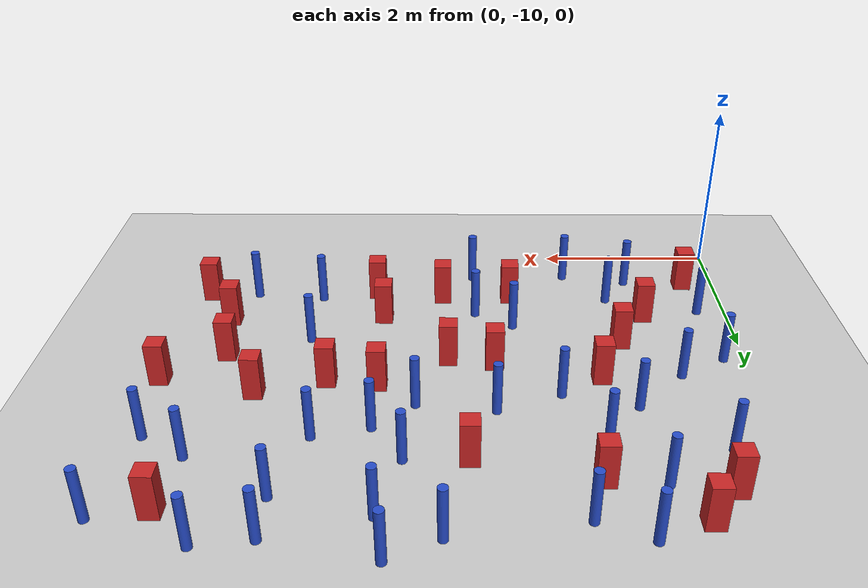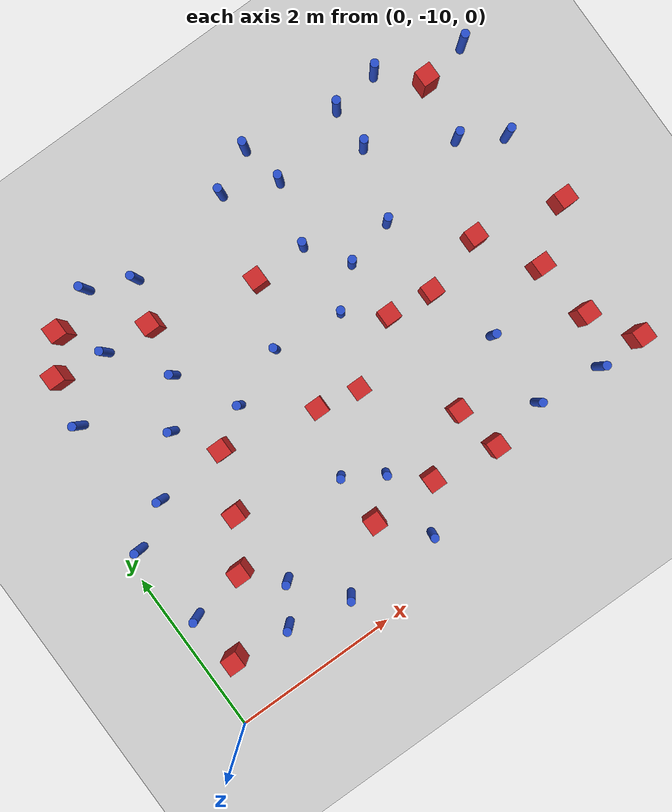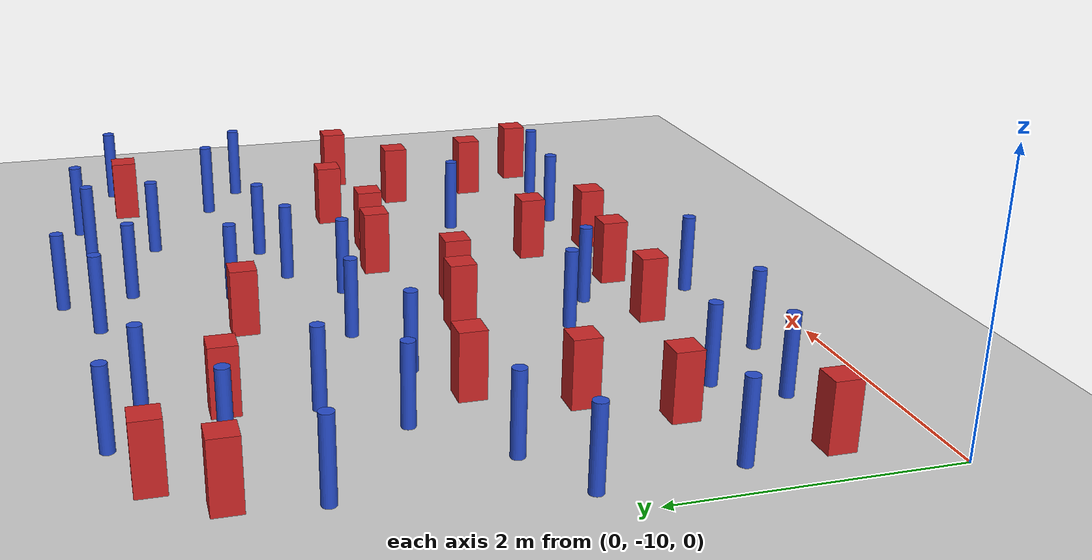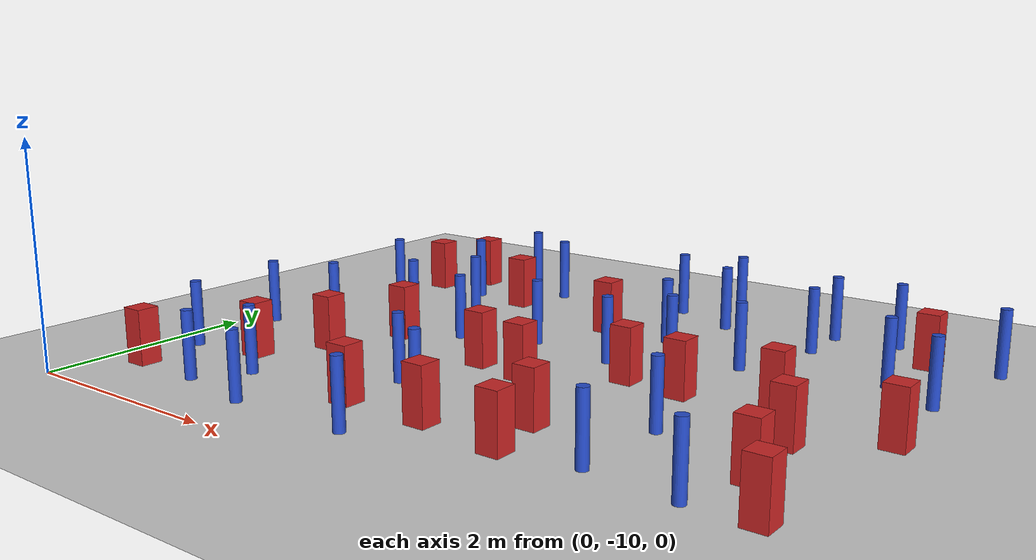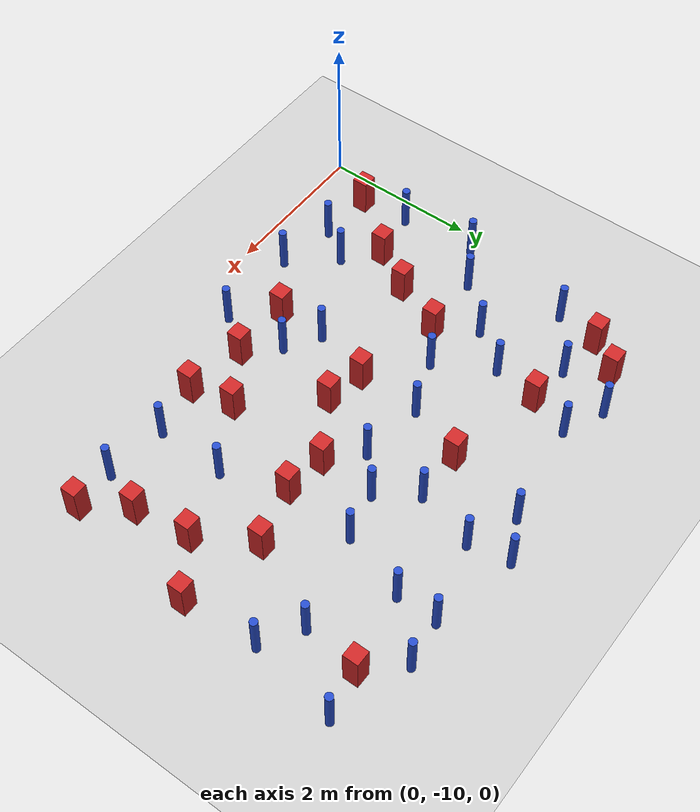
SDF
<sdf version="1.6">
 <world name="default">
  <model name="ground_plane">
   <static>1</static>
   <link name="link">
    <collision name="collision">
     <geometry><plane><normal>0 0 1</normal><size>100 100</size></plane></geometry>
     <surface><friction><ode><mu>100</mu><mu2>50</mu2></ode></friction></surface>
    </collision>
    <visual name="visual">
     <cast_shadows>0</cast_shadows>
     <geometry><plane><normal>0 0 1</normal><size>100 100</size></plane></geometry>
     <material>
      <ambient>1.0 1.0 1.0 1.0</ambient>
      <diffuse>0.8 0.8 0.8 1.0</diffuse>
      <specular>0.01 0.01 0.01 1.000000</specular>
     </material>
    </visual>
   </link>
  </model>
  <model name="pole_obstacle1">
   <static>true</static>
   <pose>4.04287633426 -6.49072544475 2.88873142074e-08 -9.90536690822e-09 4.60219948966e-07 -1.20965994976e-07</pose>
   <link name="link">
    <pose>0 0 0.3 0 -0 0</pose>
    <inertial>
     <mass>1</mass>
     <inertia><ixx>0.145833</ixx><ixy>0</ixy><ixz>0</ixz><iyy>0.145833</iyy><iyz>0</iyz><izz>0.125</izz></inertia>
    </inertial>
    <collision name="collision">
     <geometry><cylinder><radius>0.05</radius><length>.6</length></cylinder></geometry>
    </collision>
    <visual name="visual">
     <geometry><cylinder><radius>0.05</radius><length>.6</length></cylinder></geometry>
     <material>
      <script><name>Gazebo/Blue</name><uri>file://media/materials/scripts/gazebo.material</uri></script>
     </material>
    </visual>
   </link>
  </model>
  <model name="pole_obstacle7">
   <static>true</static>
   <pose>5.8151142587 -6.04497353995 2.88873142074e-08 -9.90536690842e-09 4.60219948965e-07 -1.20965994976e-07</pose>
   <link name="link">
    <pose>0 0 0.3 0 -0 0</pose>
    <inertial>
     <mass>1</mass>
     <inertia><ixx>0.145833</ixx><ixy>0</ixy><ixz>0</ixz><iyy>0.145833</iyy><iyz>0</iyz><izz>0.125</izz></inertia>
    </inertial>
    <collision name="collision">
     <geometry><cylinder><radius>0.05</radius><length>.6</length></cylinder></geometry>
    </collision>
    <visual name="visual">
     <geometry><cylinder><radius>0.05</radius><length>.6</length></cylinder></geometry>
     <material>
      <script><name>Gazebo/Blue</name><uri>file://media/materials/scripts/gazebo.material</uri></script>
     </material>
    </visual>
   </link>
  </model>
  <model name="pole_obstacle10">
   <static>true</static>
   <pose>6.29186113247 -6.3446759552 2.88873142074e-08 -9.90536690842e-09 4.60219948965e-07 -1.20965994976e-07</pose>
   <link name="link">
    <pose>0 0 0.3 0 -0 0</pose>
    <inertial>
     <mass>1</mass>
     <inertia><ixx>0.145833</ixx><ixy>0</ixy><ixz>0</ixz><iyy>0.145833</iyy><iyz>0</iyz><izz>0.125</izz></inertia>
    </inertial>
    <collision name="collision">
     <geometry><cylinder><radius>0.05</radius><length>.6</length></cylinder></geometry>
    </collision>
    <visual name="visual">
     <geometry><cylinder><radius>0.05</radius><length>.6</length></cylinder></geometry>
     <material>
      <script><name>Gazebo/Blue</name><uri>file://media/materials/scripts/gazebo.material</uri></script>
     </material>
    </visual>
   </link>
  </model>
  <model name="pole_obstacle12">
   <static>true</static>
   <pose>4.84203665692 -8.06786796718 2.88873142074e-08 -9.9053668967e-09 4.60219948993e-07 -1.20965994957e-07</pose>
   <link name="link">
    <pose>0 0 0.3 0 -0 0</pose>
    <inertial>
     <mass>1</mass>
     <inertia><ixx>0.145833</ixx><ixy>0</ixy><ixz>0</ixz><iyy>0.145833</iyy><iyz>0</iyz><izz>0.125</izz></inertia>
    </inertial>
    <collision name="collision">
     <geometry><cylinder><radius>0.05</radius><length>.6</length></cylinder></geometry>
    </collision>
    <visual name="visual">
     <geometry><cylinder><radius>0.05</radius><length>.6</length></cylinder></geometry>
     <material>
      <script><name>Gazebo/Blue</name><uri>file://media/materials/scripts/gazebo.material</uri></script>
     </material>
    </visual>
   </link>
  </model>
  <model name="pole_obstacle18">
   <static>true</static>
   <pose>0.325751754832 -8.67994105944 2.88873142074e-08 -9.90536691079e-09 4.6021994896e-07 -1.2096599498e-07</pose>
   <link name="link">
    <pose>0 0 0.3 0 -0 0</pose>
    <inertial>
     <mass>1</mass>
     <inertia><ixx>0.145833</ixx><ixy>0</ixy><ixz>0</ixz><iyy>0.145833</iyy><iyz>0</iyz><izz>0.125</izz></inertia>
    </inertial>
    <collision name="collision">
     <geometry><cylinder><radius>0.05</radius><length>.6</length></cylinder></geometry>
    </collision>
    <visual name="visual">
     <geometry><cylinder><radius>0.05</radius><length>.6</length></cylinder></geometry>
     <material>
      <script><name>Gazebo/Blue</name><uri>file://media/materials/scripts/gazebo.material</uri></script>
     </material>
    </visual>
   </link>
  </model>
  <model name="square_post_obstacle29">
   <static>true</static>
   <pose>4.04044984738 -8.52653990683 8.22691968438e-08 7.22125133819e-06 -7.54495500217e-07 2.29674213826e-05</pose>
   <link name="link">
    <pose>0 0 0.25 0 -0 0</pose>
    <inertial>
     <mass>100</mass>
     <inertia>
      <ixx>0.166667</ixx>
      <ixy>0</ixy>
      <ixz>0</ixz>
      <iyy>0.166667</iyy>
      <iyz>0</iyz>
      <izz>0.166667</izz>
     </inertia>
    </inertial>
    <collision name="collision"><geometry><box><size>.2 .2 .5</size></box></geometry></collision>
    <visual name="visual">
     <geometry><box><size>.2 .2 .5</size></box></geometry>
     <material>
      <script><name>Gazebo/Red</name><uri>file://media/materials/scripts/gazebo.material</uri></script>
     </material>
    </visual>
   </link>
  </model>
  <model name="pole_obstacle20">
   <static>true</static>
   <pose>1.982810739 -5.21497614298 2.88873142074e-08 -9.9053668918e-09 4.60219949005e-07 -1.20965994951e-07</pose>
   <link name="link">
    <pose>0 0 0.3 0 -0 0</pose>
    <inertial>
     <mass>1</mass>
     <inertia><ixx>0.145833</ixx><ixy>0</ixy><ixz>0</ixz><iyy>0.145833</iyy><iyz>0</iyz><izz>0.125</izz></inertia>
    </inertial>
    <collision name="collision">
     <geometry><cylinder><radius>0.05</radius><length>.6</length></cylinder></geometry>
    </collision>
    <visual name="visual">
     <geometry><cylinder><radius>0.05</radius><length>.6</length></cylinder></geometry>
     <material>
      <script><name>Gazebo/Blue</name><uri>file://media/materials/scripts/gazebo.material</uri></script>
     </material>
    </visual>
   </link>
  </model>
  <model name="pole_obstacle22">
   <static>true</static>
   <pose>2.78125124765 -6.76724016403 2.88873142074e-08 -9.90536689859e-09 4.60219948989e-07 -1.20965994961e-07</pose>
   <link name="link">
    <pose>0 0 0.3 0 -0 0</pose>
    <inertial>
     <mass>1</mass>
     <inertia><ixx>0.145833</ixx><ixy>0</ixy><ixz>0</ixz><iyy>0.145833</iyy><iyz>0</iyz><izz>0.125</izz></inertia>
    </inertial>
    <collision name="collision">
     <geometry><cylinder><radius>0.05</radius><length>.6</length></cylinder></geometry>
    </collision>
    <visual name="visual">
     <geometry><cylinder><radius>0.05</radius><length>.6</length></cylinder></geometry>
     <material>
      <script><name>Gazebo/Blue</name><uri>file://media/materials/scripts/gazebo.material</uri></script>
     </material>
    </visual>
   </link>
  </model>
  <model name="pole_obstacle27">
   <static>true</static>
   <pose>0.765801945852 -7.38767560222 2.88873142074e-08 -9.90536689661e-09 4.60219948993e-07 -1.20965994957e-07</pose>
   <link name="link">
    <pose>0 0 0.3 0 -0 0</pose>
    <inertial>
     <mass>1</mass>
     <inertia><ixx>0.145833</ixx><ixy>0</ixy><ixz>0</ixz><iyy>0.145833</iyy><iyz>0</iyz><izz>0.125</izz></inertia>
    </inertial>
    <collision name="collision">
     <geometry><cylinder><radius>0.05</radius><length>.6</length></cylinder></geometry>
    </collision>
    <visual name="visual">
     <geometry><cylinder><radius>0.05</radius><length>.6</length></cylinder></geometry>
     <material>
      <script><name>Gazebo/Blue</name><uri>file://media/materials/scripts/gazebo.material</uri></script>
     </material>
    </visual>
   </link>
  </model>
  <model name="square_post_obstacle37">
   <static>true</static>
   <pose>6.16039841906 -9.03129335491 8.22691968438e-08 7.2212513382e-06 -7.54495500217e-07 2.29674213826e-05</pose>
   <link name="link">
    <pose>0 0 0.25 0 -0 0</pose>
    <inertial>
     <mass>100</mass>
     <inertia>
      <ixx>0.166667</ixx>
      <ixy>0</ixy>
      <ixz>0</ixz>
      <iyy>0.166667</iyy>
      <iyz>0</iyz>
      <izz>0.166667</izz>
     </inertia>
    </inertial>
    <collision name="collision"><geometry><box><size>.2 .2 .5</size></box></geometry></collision>
    <visual name="visual">
     <geometry><box><size>.2 .2 .5</size></box></geometry>
     <material>
      <script><name>Gazebo/Red</name><uri>file://media/materials/scripts/gazebo.material</uri></script>
     </material>
    </visual>
   </link>
  </model>
  <model name="pole_obstacle42">
   <static>true</static>
   <pose>1.38248193923 -8.94168669638 2.88873142074e-08 -9.90536690474e-09 4.60219948974e-07 -1.2096599497e-07</pose>
   <link name="link">
    <pose>0 0 0.3 0 -0 0</pose>
    <inertial>
     <mass>1</mass>
     <inertia><ixx>0.145833</ixx><ixy>0</ixy><ixz>0</ixz><iyy>0.145833</iyy><iyz>0</iyz><izz>0.125</izz></inertia>
    </inertial>
    <collision name="collision">
     <geometry><cylinder><radius>0.05</radius><length>.6</length></cylinder></geometry>
    </collision>
    <visual name="visual">
     <geometry><cylinder><radius>0.05</radius><length>.6</length></cylinder></geometry>
     <material>
      <script><name>Gazebo/Blue</name><uri>file://media/materials/scripts/gazebo.material</uri></script>
     </material>
    </visual>
   </link>
  </model>
  <model name="square_post_obstacle41">
   <static>true</static>
   <pose>5.3135595105 -7.05821494191 8.22691968438e-08 7.22125133819e-06 -7.54495500217e-07 2.29674213826e-05</pose>
   <link name="link">
    <pose>0 0 0.25 0 -0 0</pose>
    <inertial>
     <mass>100</mass>
     <inertia>
      <ixx>0.166667</ixx>
      <ixy>0</ixy>
      <ixz>0</ixz>
      <iyy>0.166667</iyy>
      <iyz>0</iyz>
      <izz>0.166667</izz>
     </inertia>
    </inertial>
    <collision name="collision"><geometry><box><size>.2 .2 .5</size></box></geometry></collision>
    <visual name="visual">
     <geometry><box><size>.2 .2 .5</size></box></geometry>
     <material>
      <script><name>Gazebo/Red</name><uri>file://media/materials/scripts/gazebo.material</uri></script>
     </material>
    </visual>
   </link>
  </model>
  <model name="square_post_obstacle52">
   <static>true</static>
   <pose>2.55511348787 -8.97697152189 8.22691968438e-08 7.22125133819e-06 -7.54495500217e-07 2.29674213826e-05</pose>
   <link name="link">
    <pose>0 0 0.25 0 -0 0</pose>
    <inertial>
     <mass>100</mass>
     <inertia>
      <ixx>0.166667</ixx>
      <ixy>0</ixy>
      <ixz>0</ixz>
      <iyy>0.166667</iyy>
      <iyz>0</iyz>
      <izz>0.166667</izz>
     </inertia>
    </inertial>
    <collision name="collision"><geometry><box><size>.2 .2 .5</size></box></geometry></collision>
    <visual name="visual">
     <geometry><box><size>.2 .2 .5</size></box></geometry>
     <material>
      <script><name>Gazebo/Red</name><uri>file://media/materials/scripts/gazebo.material</uri></script>
     </material>
    </visual>
   </link>
  </model>
  <model name="pole_obstacle59">
   <static>true</static>
   <pose>1.69022382138 -6.33655352001 2.88873142074e-08 -9.90536689852e-09 4.60219948989e-07 -1.2096599496e-07</pose>
   <link name="link">
    <pose>0 0 0.3 0 -0 0</pose>
    <inertial>
     <mass>1</mass>
     <inertia><ixx>0.145833</ixx><ixy>0</ixy><ixz>0</ixz><iyy>0.145833</iyy><iyz>0</iyz><izz>0.125</izz></inertia>
    </inertial>
    <collision name="collision">
     <geometry><cylinder><radius>0.05</radius><length>.6</length></cylinder></geometry>
    </collision>
    <visual name="visual">
     <geometry><cylinder><radius>0.05</radius><length>.6</length></cylinder></geometry>
     <material>
      <script><name>Gazebo/Blue</name><uri>file://media/materials/scripts/gazebo.material</uri></script>
     </material>
    </visual>
   </link>
  </model>
  <model name="pole_obstacle62">
   <static>true</static>
   <pose>0.508377927704 -6.17928972363 2.88873142074e-08 -9.90536689714e-09 4.60219948992e-07 -1.20965994957e-07</pose>
   <link name="link">
    <pose>0 0 0.3 0 -0 0</pose>
    <inertial>
     <mass>1</mass>
     <inertia><ixx>0.145833</ixx><ixy>0</ixy><ixz>0</ixz><iyy>0.145833</iyy><iyz>0</iyz><izz>0.125</izz></inertia>
    </inertial>
    <collision name="collision">
     <geometry><cylinder><radius>0.05</radius><length>.6</length></cylinder></geometry>
    </collision>
    <visual name="visual">
     <geometry><cylinder><radius>0.05</radius><length>.6</length></cylinder></geometry>
     <material>
      <script><name>Gazebo/Blue</name><uri>file://media/materials/scripts/gazebo.material</uri></script>
     </material>
    </visual>
   </link>
  </model>
  <model name="pole_obstacle64">
   <static>true</static>
   <pose>3.31104170764 -5.00137474078 2.88873142074e-08 -9.90536689859e-09 4.60219948989e-07 -1.20965994961e-07</pose>
   <link name="link">
    <pose>0 0 0.3 0 -0 0</pose>
    <inertial>
     <mass>1</mass>
     <inertia><ixx>0.145833</ixx><ixy>0</ixy><ixz>0</ixz><iyy>0.145833</iyy><iyz>0</iyz><izz>0.125</izz></inertia>
    </inertial>
    <collision name="collision">
     <geometry><cylinder><radius>0.05</radius><length>.6</length></cylinder></geometry>
    </collision>
    <visual name="visual">
     <geometry><cylinder><radius>0.05</radius><length>.6</length></cylinder></geometry>
     <material>
      <script><name>Gazebo/Blue</name><uri>file://media/materials/scripts/gazebo.material</uri></script>
     </material>
    </visual>
   </link>
  </model>
  <model name="square_post_obstacle67">
   <static>true</static>
   <pose>5.7255229135 -7.75346443325 8.22691968438e-08 7.22125133819e-06 -7.54495500217e-07 2.29674213826e-05</pose>
   <link name="link">
    <pose>0 0 0.25 0 -0 0</pose>
    <inertial>
     <mass>100</mass>
     <inertia>
      <ixx>0.166667</ixx>
      <ixy>0</ixy>
      <ixz>0</ixz>
      <iyy>0.166667</iyy>
      <iyz>0</iyz>
      <izz>0.166667</izz>
     </inertia>
    </inertial>
    <collision name="collision"><geometry><box><size>.2 .2 .5</size></box></geometry></collision>
    <visual name="visual">
     <geometry><box><size>.2 .2 .5</size></box></geometry>
     <material>
      <script><name>Gazebo/Red</name><uri>file://media/materials/scripts/gazebo.material</uri></script>
     </material>
    </visual>
   </link>
  </model>
  <model name="pole_obstacle70">
   <static>true</static>
   <pose>2.97056904306 -8.62301015528 2.88873142074e-08 -9.90536692318e-09 4.6021994893e-07 -1.20965994988e-07</pose>
   <link name="link">
    <pose>0 0 0.3 0 -0 0</pose>
    <inertial>
     <mass>1</mass>
     <inertia><ixx>0.145833</ixx><ixy>0</ixy><ixz>0</ixz><iyy>0.145833</iyy><iyz>0</iyz><izz>0.125</izz></inertia>
    </inertial>
    <collision name="collision">
     <geometry><cylinder><radius>0.05</radius><length>.6</length></cylinder></geometry>
    </collision>
    <visual name="visual">
     <geometry><cylinder><radius>0.05</radius><length>.6</length></cylinder></geometry>
     <material>
      <script><name>Gazebo/Blue</name><uri>file://media/materials/scripts/gazebo.material</uri></script>
     </material>
    </visual>
   </link>
  </model>
  <model name="pole_obstacle76">
   <static>true</static>
   <pose>3.61656505468 -6.8659625876 2.88873142074e-08 -9.90536689859e-09 4.60219948989e-07 -1.20965994961e-07</pose>
   <link name="link">
    <pose>0 0 0.3 0 -0 0</pose>
    <inertial>
     <mass>1</mass>
     <inertia><ixx>0.145833</ixx><ixy>0</ixy><ixz>0</ixz><iyy>0.145833</iyy><iyz>0</iyz><izz>0.125</izz></inertia>
    </inertial>
    <collision name="collision">
     <geometry><cylinder><radius>0.05</radius><length>.6</length></cylinder></geometry>
    </collision>
    <visual name="visual">
     <geometry><cylinder><radius>0.05</radius><length>.6</length></cylinder></geometry>
     <material>
      <script><name>Gazebo/Blue</name><uri>file://media/materials/scripts/gazebo.material</uri></script>
     </material>
    </visual>
   </link>
  </model>
  <model name="pole_obstacle77">
   <static>true</static>
   <pose>2.54101923501 -8.35413236426 2.88873142074e-08 -9.90536692318e-09 4.6021994893e-07 -1.20965994988e-07</pose>
   <link name="link">
    <pose>0 0 0.3 0 -0 0</pose>
    <inertial>
     <mass>1</mass>
     <inertia><ixx>0.145833</ixx><ixy>0</ixy><ixz>0</ixz><iyy>0.145833</iyy><iyz>0</iyz><izz>0.125</izz></inertia>
    </inertial>
    <collision name="collision">
     <geometry><cylinder><radius>0.05</radius><length>.6</length></cylinder></geometry>
    </collision>
    <visual name="visual">
     <geometry><cylinder><radius>0.05</radius><length>.6</length></cylinder></geometry>
     <material>
      <script><name>Gazebo/Blue</name><uri>file://media/materials/scripts/gazebo.material</uri></script>
     </material>
    </visual>
   </link>
  </model>
  <model name="pole_obstacle79">
   <static>true</static>
   <pose>4.91550387004 -5.50402393911 2.88873142074e-08 -9.90536690842e-09 4.60219948965e-07 -1.20965994976e-07</pose>
   <link name="link">
    <pose>0 0 0.3 0 -0 0</pose>
    <inertial>
     <mass>1</mass>
     <inertia><ixx>0.145833</ixx><ixy>0</ixy><ixz>0</ixz><iyy>0.145833</iyy><iyz>0</iyz><izz>0.125</izz></inertia>
    </inertial>
    <collision name="collision">
     <geometry><cylinder><radius>0.05</radius><length>.6</length></cylinder></geometry>
    </collision>
    <visual name="visual">
     <geometry><cylinder><radius>0.05</radius><length>.6</length></cylinder></geometry>
     <material>
      <script><name>Gazebo/Blue</name><uri>file://media/materials/scripts/gazebo.material</uri></script>
     </material>
    </visual>
   </link>
  </model>
  <model name="pole_obstacle90">
   <static>true</static>
   <pose>2.09218858942 -7.04279256561 2.88873142074e-08 -9.90536689859e-09 4.60219948989e-07 -1.20965994961e-07</pose>
   <link name="link">
    <pose>0 0 0.3 0 -0 0</pose>
    <inertial>
     <mass>1</mass>
     <inertia><ixx>0.145833</ixx><ixy>0</ixy><ixz>0</ixz><iyy>0.145833</iyy><iyz>0</iyz><izz>0.125</izz></inertia>
    </inertial>
    <collision name="collision">
     <geometry><cylinder><radius>0.05</radius><length>.6</length></cylinder></geometry>
    </collision>
    <visual name="visual">
     <geometry><cylinder><radius>0.05</radius><length>.6</length></cylinder></geometry>
     <material>
      <script><name>Gazebo/Blue</name><uri>file://media/materials/scripts/gazebo.material</uri></script>
     </material>
    </visual>
   </link>
  </model>
  <model name="pole_obstacle92">
   <static>true</static>
   <pose>1.31041038531 -6.83688236487 2.88873142074e-08 -9.90536689852e-09 4.60219948989e-07 -1.2096599496e-07</pose>
   <link name="link">
    <pose>0 0 0.3 0 -0 0</pose>
    <inertial>
     <mass>1</mass>
     <inertia><ixx>0.145833</ixx><ixy>0</ixy><ixz>0</ixz><iyy>0.145833</iyy><iyz>0</iyz><izz>0.125</izz></inertia>
    </inertial>
    <collision name="collision">
     <geometry><cylinder><radius>0.05</radius><length>.6</length></cylinder></geometry>
    </collision>
    <visual name="visual">
     <geometry><cylinder><radius>0.05</radius><length>.6</length></cylinder></geometry>
     <material>
      <script><name>Gazebo/Blue</name><uri>file://media/materials/scripts/gazebo.material</uri></script>
     </material>
    </visual>
   </link>
  </model>
  <model name="square_post_obstacle87">
   <static>true</static>
   <pose>5.81590552961 -8.47734369625 8.22691968438e-08 7.22125133819e-06 -7.54495500217e-07 2.29674213826e-05</pose>
   <link name="link">
    <pose>0 0 0.25 0 -0 0</pose>
    <inertial>
     <mass>100</mass>
     <inertia>
      <ixx>0.166667</ixx>
      <ixy>0</ixy>
      <ixz>0</ixz>
      <iyy>0.166667</iyy>
      <iyz>0</iyz>
      <izz>0.166667</izz>
     </inertia>
    </inertial>
    <collision name="collision"><geometry><box><size>.2 .2 .5</size></box></geometry></collision>
    <visual name="visual">
     <geometry><box><size>.2 .2 .5</size></box></geometry>
     <material>
      <script><name>Gazebo/Red</name><uri>file://media/materials/scripts/gazebo.material</uri></script>
     </material>
    </visual>
   </link>
  </model>
  <model name="pole_obstacle98">
   <static>true</static>
   <pose>3.82572212964 -4.74220280069 2.88873142074e-08 -9.90536689859e-09 4.60219948989e-07 -1.20965994961e-07</pose>
   <link name="link">
    <pose>0 0 0.3 0 -0 0</pose>
    <inertial>
     <mass>1</mass>
     <inertia><ixx>0.145833</ixx><ixy>0</ixy><ixz>0</ixz><iyy>0.145833</iyy><iyz>0</iyz><izz>0.125</izz></inertia>
    </inertial>
    <collision name="collision">
     <geometry><cylinder><radius>0.05</radius><length>.6</length></cylinder></geometry>
    </collision>
    <visual name="visual">
     <geometry><cylinder><radius>0.05</radius><length>.6</length></cylinder></geometry>
     <material>
      <script><name>Gazebo/Blue</name><uri>file://media/materials/scripts/gazebo.material</uri></script>
     </material>
    </visual>
   </link>
  </model>
  <model name="square_post_obstacle88">
   <static>true</static>
   <pose>2.77892598183 -7.58141681417 8.22691968438e-08 7.2212513382e-06 -7.54495500217e-07 2.29674213826e-05</pose>
   <link name="link">
    <pose>0 0 0.25 0 -0 0</pose>
    <inertial>
     <mass>100</mass>
     <inertia>
      <ixx>0.166667</ixx>
      <ixy>0</ixy>
      <ixz>0</ixz>
      <iyy>0.166667</iyy>
      <iyz>0</iyz>
      <izz>0.166667</izz>
     </inertia>
    </inertial>
    <collision name="collision"><geometry><box><size>.2 .2 .5</size></box></geometry></collision>
    <visual name="visual">
     <geometry><box><size>.2 .2 .5</size></box></geometry>
     <material>
      <script><name>Gazebo/Red</name><uri>file://media/materials/scripts/gazebo.material</uri></script>
     </material>
    </visual>
   </link>
  </model>
  <model name="pole_obstacle101">
   <static>true</static>
   <pose>4.80927617181 -8.96978987125 2.88873142074e-08 -9.9053668967e-09 4.60219948993e-07 -1.20965994957e-07</pose>
   <link name="link">
    <pose>0 0 0.3 0 -0 0</pose>
    <inertial>
     <mass>1</mass>
     <inertia><ixx>0.145833</ixx><ixy>0</ixy><ixz>0</ixz><iyy>0.145833</iyy><iyz>0</iyz><izz>0.125</izz></inertia>
    </inertial>
    <collision name="collision">
     <geometry><cylinder><radius>0.05</radius><length>.6</length></cylinder></geometry>
    </collision>
    <visual name="visual">
     <geometry><cylinder><radius>0.05</radius><length>.6</length></cylinder></geometry>
     <material>
      <script><name>Gazebo/Blue</name><uri>file://media/materials/scripts/gazebo.material</uri></script>
     </material>
    </visual>
   </link>
  </model>
  <model name="pole_obstacle104">
   <static>true</static>
   <pose>3.9267713062 -5.26392360913 2.88873142074e-08 -9.90536689859e-09 4.60219948989e-07 -1.20965994961e-07</pose>
   <link name="link">
    <pose>0 0 0.3 0 -0 0</pose>
    <inertial>
     <mass>1</mass>
     <inertia><ixx>0.145833</ixx><ixy>0</ixy><ixz>0</ixz><iyy>0.145833</iyy><iyz>0</iyz><izz>0.125</izz></inertia>
    </inertial>
    <collision name="collision">
     <geometry><cylinder><radius>0.05</radius><length>.6</length></cylinder></geometry>
    </collision>
    <visual name="visual">
     <geometry><cylinder><radius>0.05</radius><length>.6</length></cylinder></geometry>
     <material>
      <script><name>Gazebo/Blue</name><uri>file://media/materials/scripts/gazebo.material</uri></script>
     </material>
    </visual>
   </link>
  </model>
  <model name="pole_obstacle105">
   <static>true</static>
   <pose>4.63309433647 -6.3471536332 2.88873142074e-08 -9.90536690842e-09 4.60219948965e-07 -1.20965994976e-07</pose>
   <link name="link">
    <pose>0 0 0.3 0 -0 0</pose>
    <inertial>
     <mass>1</mass>
     <inertia><ixx>0.145833</ixx><ixy>0</ixy><ixz>0</ixz><iyy>0.145833</iyy><iyz>0</iyz><izz>0.125</izz></inertia>
    </inertial>
    <collision name="collision">
     <geometry><cylinder><radius>0.05</radius><length>.6</length></cylinder></geometry>
    </collision>
    <visual name="visual">
     <geometry><cylinder><radius>0.05</radius><length>.6</length></cylinder></geometry>
     <material>
      <script><name>Gazebo/Blue</name><uri>file://media/materials/scripts/gazebo.material</uri></script>
     </material>
    </visual>
   </link>
  </model>
  <model name="square_post_obstacle97">
   <static>true</static>
   <pose>1.63981902081 -7.32814832434 8.22691968438e-08 7.2212513382e-06 -7.54495500217e-07 2.29674213826e-05</pose>
   <link name="link">
    <pose>0 0 0.25 0 -0 0</pose>
    <inertial>
     <mass>100</mass>
     <inertia>
      <ixx>0.166667</ixx>
      <ixy>0</ixy>
      <ixz>0</ixz>
      <iyy>0.166667</iyy>
      <iyz>0</iyz>
      <izz>0.166667</izz>
     </inertia>
    </inertial>
    <collision name="collision"><geometry><box><size>.2 .2 .5</size></box></geometry></collision>
    <visual name="visual">
     <geometry><box><size>.2 .2 .5</size></box></geometry>
     <material>
      <script><name>Gazebo/Red</name><uri>file://media/materials/scripts/gazebo.material</uri></script>
     </material>
    </visual>
   </link>
  </model>
  <model name="pole_obstacle115">
   <static>true</static>
   <pose>1.09864099348 -9.35944741339 2.88873142074e-08 -9.90536690474e-09 4.60219948974e-07 -1.2096599497e-07</pose>
   <link name="link">
    <pose>0 0 0.3 0 -0 0</pose>
    <inertial>
     <mass>1</mass>
     <inertia><ixx>0.145833</ixx><ixy>0</ixy><ixz>0</ixz><iyy>0.145833</iyy><iyz>0</iyz><izz>0.125</izz></inertia>
    </inertial>
    <collision name="collision">
     <geometry><cylinder><radius>0.05</radius><length>.6</length></cylinder></geometry>
    </collision>
    <visual name="visual">
     <geometry><cylinder><radius>0.05</radius><length>.6</length></cylinder></geometry>
     <material>
      <script><name>Gazebo/Blue</name><uri>file://media/materials/scripts/gazebo.material</uri></script>
     </material>
    </visual>
   </link>
  </model>
  <model name="square_post_obstacle105">
   <static>true</static>
   <pose>1.81476592239 -5.73671795768 8.22691968438e-08 7.2212513382e-06 -7.54495500217e-07 2.29674213826e-05</pose>
   <link name="link">
    <pose>0 0 0.25 0 -0 0</pose>
    <inertial>
     <mass>100</mass>
     <inertia>
      <ixx>0.166667</ixx>
      <ixy>0</ixy>
      <ixz>0</ixz>
      <iyy>0.166667</iyy>
      <iyz>0</iyz>
      <izz>0.166667</izz>
     </inertia>
    </inertial>
    <collision name="collision"><geometry><box><size>.2 .2 .5</size></box></geometry></collision>
    <visual name="visual">
     <geometry><box><size>.2 .2 .5</size></box></geometry>
     <material>
      <script><name>Gazebo/Red</name><uri>file://media/materials/scripts/gazebo.material</uri></script>
     </material>
    </visual>
   </link>
  </model>
  <model name="pole_obstacle125">
   <static>true</static>
   <pose>1.22670410657 -5.68445509134 2.88873142074e-08 -9.90536689852e-09 4.60219948989e-07 -1.2096599496e-07</pose>
   <link name="link">
    <pose>0 0 0.3 0 -0 0</pose>
    <inertial>
     <mass>1</mass>
     <inertia><ixx>0.145833</ixx><ixy>0</ixy><ixz>0</ixz><iyy>0.145833</iyy><iyz>0</iyz><izz>0.125</izz></inertia>
    </inertial>
    <collision name="collision">
     <geometry><cylinder><radius>0.05</radius><length>.6</length></cylinder></geometry>
    </collision>
    <visual name="visual">
     <geometry><cylinder><radius>0.05</radius><length>.6</length></cylinder></geometry>
     <material>
      <script><name>Gazebo/Blue</name><uri>file://media/materials/scripts/gazebo.material</uri></script>
     </material>
    </visual>
   </link>
  </model>
  <model name="square_post_obstacle115">
   <static>true</static>
   <pose>5.90699300105 -5.31852797922 8.22691968438e-08 7.2212513382e-06 -7.54495500217e-07 2.29674213826e-05</pose>
   <link name="link">
    <pose>0 0 0.25 0 -0 0</pose>
    <inertial>
     <mass>100</mass>
     <inertia>
      <ixx>0.166667</ixx>
      <ixy>0</ixy>
      <ixz>0</ixz>
      <iyy>0.166667</iyy>
      <iyz>0</iyz>
      <izz>0.166667</izz>
     </inertia>
    </inertial>
    <collision name="collision"><geometry><box><size>.2 .2 .5</size></box></geometry></collision>
    <visual name="visual">
     <geometry><box><size>.2 .2 .5</size></box></geometry>
     <material>
      <script><name>Gazebo/Red</name><uri>file://media/materials/scripts/gazebo.material</uri></script>
     </material>
    </visual>
   </link>
  </model>
  <model name="square_post_obstacle117">
   <static>true</static>
   <pose>0.939810982237 -5.20333505614 8.22691968438e-08 7.22125133819e-06 -7.54495500217e-07 2.29674213826e-05</pose>
   <link name="link">
    <pose>0 0 0.25 0 -0 0</pose>
    <inertial>
     <mass>100</mass>
     <inertia>
      <ixx>0.166667</ixx>
      <ixy>0</ixy>
      <ixz>0</ixz>
      <iyy>0.166667</iyy>
      <iyz>0</iyz>
      <izz>0.166667</izz>
     </inertia>
    </inertial>
    <collision name="collision"><geometry><box><size>.2 .2 .5</size></box></geometry></collision>
    <visual name="visual">
     <geometry><box><size>.2 .2 .5</size></box></geometry>
     <material>
      <script><name>Gazebo/Red</name><uri>file://media/materials/scripts/gazebo.material</uri></script>
     </material>
    </visual>
   </link>
  </model>
  <model name="square_post_obstacle139">
   <static>true</static>
   <pose>4.14708402588 -9.08529104154 8.22691968438e-08 7.22125133819e-06 -7.54495500217e-07 2.29674213826e-05</pose>
   <link name="link">
    <pose>0 0 0.25 0 -0 0</pose>
    <inertial>
     <mass>100</mass>
     <inertia>
      <ixx>0.166667</ixx>
      <ixy>0</ixy>
      <ixz>0</ixz>
      <iyy>0.166667</iyy>
      <iyz>0</iyz>
      <izz>0.166667</izz>
     </inertia>
    </inertial>
    <collision name="collision"><geometry><box><size>.2 .2 .5</size></box></geometry></collision>
    <visual name="visual">
     <geometry><box><size>.2 .2 .5</size></box></geometry>
     <material>
      <script><name>Gazebo/Red</name><uri>file://media/materials/scripts/gazebo.material</uri></script>
     </material>
    </visual>
   </link>
  </model>
  <model name="square_post_obstacle142">
   <static>true</static>
   <pose>3.06664992832 -6.02341117171 8.22691968438e-08 7.22125133819e-06 -7.54495500217e-07 2.29674213826e-05</pose>
   <link name="link">
    <pose>0 0 0.25 0 -0 0</pose>
    <inertial>
     <mass>100</mass>
     <inertia>
      <ixx>0.166667</ixx>
      <ixy>0</ixy>
      <ixz>0</ixz>
      <iyy>0.166667</iyy>
      <iyz>0</iyz>
      <izz>0.166667</izz>
     </inertia>
    </inertial>
    <collision name="collision"><geometry><box><size>.2 .2 .5</size></box></geometry></collision>
    <visual name="visual">
     <geometry><box><size>.2 .2 .5</size></box></geometry>
     <material>
      <script><name>Gazebo/Red</name><uri>file://media/materials/scripts/gazebo.material</uri></script>
     </material>
    </visual>
   </link>
  </model>
  <model name="square_post_obstacle148">
   <static>true</static>
   <pose>6.35718638517 -7.2982883843 8.22691968438e-08 7.2212513382e-06 -7.54495500217e-07 2.29674213826e-05</pose>
   <link name="link">
    <pose>0 0 0.25 0 -0 0</pose>
    <inertial>
     <mass>100</mass>
     <inertia>
      <ixx>0.166667</ixx>
      <ixy>0</ixy>
      <ixz>0</ixz>
      <iyy>0.166667</iyy>
      <iyz>0</iyz>
      <izz>0.166667</izz>
     </inertia>
    </inertial>
    <collision name="collision"><geometry><box><size>.2 .2 .5</size></box></geometry></collision>
    <visual name="visual">
     <geometry><box><size>.2 .2 .5</size></box></geometry>
     <material>
      <script><name>Gazebo/Red</name><uri>file://media/materials/scripts/gazebo.material</uri></script>
     </material>
    </visual>
   </link>
  </model>
  <model name="pole_obstacle162">
   <static>true</static>
   <pose>5.60923825936 -9.05204116258 2.88873142074e-08 -9.9053668967e-09 4.60219948993e-07 -1.20965994957e-07</pose>
   <link name="link">
    <pose>0 0 0.3 0 -0 0</pose>
    <inertial>
     <mass>1</mass>
     <inertia><ixx>0.145833</ixx><ixy>0</ixy><ixz>0</ixz><iyy>0.145833</iyy><iyz>0</iyz><izz>0.125</izz></inertia>
    </inertial>
    <collision name="collision">
     <geometry><cylinder><radius>0.05</radius><length>.6</length></cylinder></geometry>
    </collision>
    <visual name="visual">
     <geometry><cylinder><radius>0.05</radius><length>.6</length></cylinder></geometry>
     <material>
      <script><name>Gazebo/Blue</name><uri>file://media/materials/scripts/gazebo.material</uri></script>
     </material>
    </visual>
   </link>
  </model>
  <model name="pole_obstacle168">
   <static>true</static>
   <pose>5.4935655834 -4.9026032696 2.88873142074e-08 -9.90536690842e-09 4.60219948965e-07 -1.20965994976e-07</pose>
   <link name="link">
    <pose>0 0 0.3 0 -0 0</pose>
    <inertial>
     <mass>1</mass>
     <inertia><ixx>0.145833</ixx><ixy>0</ixy><ixz>0</ixz><iyy>0.145833</iyy><iyz>0</iyz><izz>0.125</izz></inertia>
    </inertial>
    <collision name="collision">
     <geometry><cylinder><radius>0.05</radius><length>.6</length></cylinder></geometry>
    </collision>
    <visual name="visual">
     <geometry><cylinder><radius>0.05</radius><length>.6</length></cylinder></geometry>
     <material>
      <script><name>Gazebo/Blue</name><uri>file://media/materials/scripts/gazebo.material</uri></script>
     </material>
    </visual>
   </link>
  </model>
  <model name="square_post_obstacle161">
   <static>true</static>
   <pose>0.390263361021 -9.30970449677 8.22691968438e-08 7.22125133819e-06 -7.54495500217e-07 2.29674213826e-05</pose>
   <link name="link">
    <pose>0 0 0.25 0 -0 0</pose>
    <inertial>
     <mass>100</mass>
     <inertia>
      <ixx>0.166667</ixx>
      <ixy>0</ixy>
      <ixz>0</ixz>
      <iyy>0.166667</iyy>
      <iyz>0</iyz>
      <izz>0.166667</izz>
     </inertia>
    </inertial>
    <collision name="collision"><geometry><box><size>.2 .2 .5</size></box></geometry></collision>
    <visual name="visual">
     <geometry><box><size>.2 .2 .5</size></box></geometry>
     <material>
      <script><name>Gazebo/Red</name><uri>file://media/materials/scripts/gazebo.material</uri></script>
     </material>
    </visual>
   </link>
  </model>
  <model name="square_post_obstacle162">
   <static>true</static>
   <pose>3.35513646008 -8.97921268587 8.22691968438e-08 7.22125133819e-06 -7.54495500217e-07 2.29674213826e-05</pose>
   <link name="link">
    <pose>0 0 0.25 0 -0 0</pose>
    <inertial>
     <mass>100</mass>
     <inertia>
      <ixx>0.166667</ixx>
      <ixy>0</ixy>
      <ixz>0</ixz>
      <iyy>0.166667</iyy>
      <iyz>0</iyz>
      <izz>0.166667</izz>
     </inertia>
    </inertial>
    <collision name="collision"><geometry><box><size>.2 .2 .5</size></box></geometry></collision>
    <visual name="visual">
     <geometry><box><size>.2 .2 .5</size></box></geometry>
     <material>
      <script><name>Gazebo/Red</name><uri>file://media/materials/scripts/gazebo.material</uri></script>
     </material>
    </visual>
   </link>
  </model>
  <model name="pole_obstacle174">
   <static>true</static>
   <pose>6.48322600134 -5.21964075652 2.88873142074e-08 -9.90536690842e-09 4.60219948965e-07 -1.20965994976e-07</pose>
   <link name="link">
    <pose>0 0 0.3 0 -0 0</pose>
    <inertial>
     <mass>1</mass>
     <inertia><ixx>0.145833</ixx><ixy>0</ixy><ixz>0</ixz><iyy>0.145833</iyy><iyz>0</iyz><izz>0.125</izz></inertia>
    </inertial>
    <collision name="collision">
     <geometry><cylinder><radius>0.05</radius><length>.6</length></cylinder></geometry>
    </collision>
    <visual name="visual">
     <geometry><cylinder><radius>0.05</radius><length>.6</length></cylinder></geometry>
     <material>
      <script><name>Gazebo/Blue</name><uri>file://media/materials/scripts/gazebo.material</uri></script>
     </material>
    </visual>
   </link>
  </model>
  <model name="pole_obstacle183">
   <static>true</static>
   <pose>4.92055740553 -4.98257295457 2.88873142074e-08 -9.90536690842e-09 4.60219948965e-07 -1.20965994976e-07</pose>
   <link name="link">
    <pose>0 0 0.3 0 -0 0</pose>
    <inertial>
     <mass>1</mass>
     <inertia><ixx>0.145833</ixx><ixy>0</ixy><ixz>0</ixz><iyy>0.145833</iyy><iyz>0</iyz><izz>0.125</izz></inertia>
    </inertial>
    <collision name="collision">
     <geometry><cylinder><radius>0.05</radius><length>.6</length></cylinder></geometry>
    </collision>
    <visual name="visual">
     <geometry><cylinder><radius>0.05</radius><length>.6</length></cylinder></geometry>
     <material>
      <script><name>Gazebo/Blue</name><uri>file://media/materials/scripts/gazebo.material</uri></script>
     </material>
    </visual>
   </link>
  </model>
  <model name="square_post_obstacle174">
   <static>true</static>
   <pose>3.2836538587 -7.67646870265 8.22691968438e-08 7.2212513382e-06 -7.54495500217e-07 2.29674213826e-05</pose>
   <link name="link">
    <pose>0 0 0.25 0 -0 0</pose>
    <inertial>
     <mass>100</mass>
     <inertia>
      <ixx>0.166667</ixx>
      <ixy>0</ixy>
      <ixz>0</ixz>
      <iyy>0.166667</iyy>
      <iyz>0</iyz>
      <izz>0.166667</izz>
     </inertia>
    </inertial>
    <collision name="collision"><geometry><box><size>.2 .2 .5</size></box></geometry></collision>
    <visual name="visual">
     <geometry><box><size>.2 .2 .5</size></box></geometry>
     <material>
      <script><name>Gazebo/Red</name><uri>file://media/materials/scripts/gazebo.material</uri></script>
     </material>
    </visual>
   </link>
  </model>
  <model name="pole_obstacle189">
   <static>true</static>
   <pose>1.85312579421 -9.49964550639 2.88873142074e-08 -9.90536690474e-09 4.60219948974e-07 -1.2096599497e-07</pose>
   <link name="link">
    <pose>0 0 0.3 0 -0 0</pose>
    <inertial>
     <mass>1</mass>
     <inertia><ixx>0.145833</ixx><ixy>0</ixy><ixz>0</ixz><iyy>0.145833</iyy><iyz>0</iyz><izz>0.125</izz></inertia>
    </inertial>
    <collision name="collision">
     <geometry><cylinder><radius>0.05</radius><length>.6</length></cylinder></geometry>
    </collision>
    <visual name="visual">
     <geometry><cylinder><radius>0.05</radius><length>.6</length></cylinder></geometry>
     <material>
      <script><name>Gazebo/Blue</name><uri>file://media/materials/scripts/gazebo.material</uri></script>
     </material>
    </visual>
   </link>
  </model>
  <model name="square_post_obstacle182">
   <static>true</static>
   <pose>1.3442041005 -8.00431232437 8.22691968438e-08 7.22125133819e-06 -7.54495500217e-07 2.29674213826e-05</pose>
   <link name="link">
    <pose>0 0 0.25 0 -0 0</pose>
    <inertial>
     <mass>100</mass>
     <inertia>
      <ixx>0.166667</ixx>
      <ixy>0</ixy>
      <ixz>0</ixz>
      <iyy>0.166667</iyy>
      <iyz>0</iyz>
      <izz>0.166667</izz>
     </inertia>
    </inertial>
    <collision name="collision"><geometry><box><size>.2 .2 .5</size></box></geometry></collision>
    <visual name="visual">
     <geometry><box><size>.2 .2 .5</size></box></geometry>
     <material>
      <script><name>Gazebo/Red</name><uri>file://media/materials/scripts/gazebo.material</uri></script>
     </material>
    </visual>
   </link>
  </model>
  <model name="pole_obstacle193">
   <static>true</static>
   <pose>0.245913194996 -7.69797750002 2.88873142074e-08 -9.90536689491e-09 4.60219948997e-07 -1.20965994955e-07</pose>
   <link name="link">
    <pose>0 0 0.3 0 -0 0</pose>
    <inertial>
     <mass>1</mass>
     <inertia><ixx>0.145833</ixx><ixy>0</ixy><ixz>0</ixz><iyy>0.145833</iyy><iyz>0</iyz><izz>0.125</izz></inertia>
    </inertial>
    <collision name="collision">
     <geometry><cylinder><radius>0.05</radius><length>.6</length></cylinder></geometry>
    </collision>
    <visual name="visual">
     <geometry><cylinder><radius>0.05</radius><length>.6</length></cylinder></geometry>
     <material>
      <script><name>Gazebo/Blue</name><uri>file://media/materials/scripts/gazebo.material</uri></script>
     </material>
    </visual>
   </link>
  </model>
  <model name="square_post_obstacle190">
   <static>true</static>
   <pose>4.03017594784 -7.20690908219 8.22691968438e-08 7.2212513382e-06 -7.54495500217e-07 2.29674213826e-05</pose>
   <link name="link">
    <pose>0 0 0.25 0 -0 0</pose>
    <inertial>
     <mass>100</mass>
     <inertia>
      <ixx>0.166667</ixx>
      <ixy>0</ixy>
      <ixz>0</ixz>
      <iyy>0.166667</iyy>
      <iyz>0</iyz>
      <izz>0.166667</izz>
     </inertia>
    </inertial>
    <collision name="collision"><geometry><box><size>.2 .2 .5</size></box></geometry></collision>
    <visual name="visual">
     <geometry><box><size>.2 .2 .5</size></box></geometry>
     <material>
      <script><name>Gazebo/Red</name><uri>file://media/materials/scripts/gazebo.material</uri></script>
     </material>
    </visual>
   </link>
  </model>
  <model name="square_post_obstacle192">
   <static>true</static>
   <pose>1.00464279021 -8.55870419659 8.22691968438e-08 7.22125133819e-06 -7.54495500217e-07 2.29674213826e-05</pose>
   <link name="link">
    <pose>0 0 0.25 0 -0 0</pose>
    <inertial>
     <mass>100</mass>
     <inertia>
      <ixx>0.166667</ixx>
      <ixy>0</ixy>
      <ixz>0</ixz>
      <iyy>0.166667</iyy>
      <iyz>0</iyz>
      <izz>0.166667</izz>
     </inertia>
    </inertial>
    <collision name="collision"><geometry><box><size>.2 .2 .5</size></box></geometry></collision>
    <visual name="visual">
     <geometry><box><size>.2 .2 .5</size></box></geometry>
     <material>
      <script><name>Gazebo/Red</name><uri>file://media/materials/scripts/gazebo.material</uri></script>
     </material>
    </visual>
   </link>
  </model>
  <model name="square_post_obstacle202">
   <static>true</static>
   <pose>4.57345235173 -7.26772506949 8.22691968438e-08 7.2212513382e-06 -7.54495500217e-07 2.29674213826e-05</pose>
   <link name="link">
    <pose>0 0 0.25 0 -0 0</pose>
    <inertial>
     <mass>100</mass>
     <inertia>
      <ixx>0.166667</ixx>
      <ixy>0</ixy>
      <ixz>0</ixz>
      <iyy>0.166667</iyy>
      <iyz>0</iyz>
      <izz>0.166667</izz>
     </inertia>
    </inertial>
    <collision name="collision"><geometry><box><size>.2 .2 .5</size></box></geometry></collision>
    <visual name="visual">
     <geometry><box><size>.2 .2 .5</size></box></geometry>
     <material>
      <script><name>Gazebo/Red</name><uri>file://media/materials/scripts/gazebo.material</uri></script>
     </material>
    </visual>
   </link>
  </model>
  <model name="square_post_obstacle204">
   <static>true</static>
   <pose>0.626519438705 -5.60620034336 8.22691968438e-08 7.2212513382e-06 -7.54495500217e-07 2.29674213826e-05</pose>
   <link name="link">
    <pose>0 0 0.25 0 -0 0</pose>
    <inertial>
     <mass>100</mass>
     <inertia>
      <ixx>0.166667</ixx>
      <ixy>0</ixy>
      <ixz>0</ixz>
      <iyy>0.166667</iyy>
      <iyz>0</iyz>
      <izz>0.166667</izz>
     </inertia>
    </inertial>
    <collision name="collision"><geometry><box><size>.2 .2 .5</size></box></geometry></collision>
    <visual name="visual">
     <geometry><box><size>.2 .2 .5</size></box></geometry>
     <material>
      <script><name>Gazebo/Red</name><uri>file://media/materials/scripts/gazebo.material</uri></script>
     </material>
    </visual>
   </link>
  </model>
  <model name="pole_obstacle229">
   <static>true</static>
   <pose>2.99326930867 -9.47581236591 2.88873142074e-08 -9.90536692318e-09 4.6021994893e-07 -1.20965994988e-07</pose>
   <link name="link">
    <pose>0 0 0.3 0 -0 0</pose>
    <inertial>
     <mass>1</mass>
     <inertia><ixx>0.145833</ixx><ixy>0</ixy><ixz>0</ixz><iyy>0.145833</iyy><iyz>0</iyz><izz>0.125</izz></inertia>
    </inertial>
    <collision name="collision">
     <geometry><cylinder><radius>0.05</radius><length>.6</length></cylinder></geometry>
    </collision>
    <visual name="visual">
     <geometry><cylinder><radius>0.05</radius><length>.6</length></cylinder></geometry>
     <material>
      <script><name>Gazebo/Blue</name><uri>file://media/materials/scripts/gazebo.material</uri></script>
     </material>
    </visual>
   </link>
  </model>
  <model name="pole_obstacle230">
   <static>true</static>
   <pose>1.45819991896 -4.98085643078 2.88873142074e-08 -9.90536689852e-09 4.60219948989e-07 -1.2096599496e-07</pose>
   <link name="link">
    <pose>0 0 0.3 0 -0 0</pose>
    <inertial>
     <mass>1</mass>
     <inertia><ixx>0.145833</ixx><ixy>0</ixy><ixz>0</ixz><iyy>0.145833</iyy><iyz>0</iyz><izz>0.125</izz></inertia>
    </inertial>
    <collision name="collision">
     <geometry><cylinder><radius>0.05</radius><length>.6</length></cylinder></geometry>
    </collision>
    <visual name="visual">
     <geometry><cylinder><radius>0.05</radius><length>.6</length></cylinder></geometry>
     <material>
      <script><name>Gazebo/Blue</name><uri>file://media/materials/scripts/gazebo.material</uri></script>
     </material>
    </visual>
   </link>
  </model>
  <model name="pole_obstacle232">
   <static>true</static>
   <pose>3.71239219025 -6.01272890976 2.88873142074e-08 -9.90536689859e-09 4.60219948989e-07 -1.20965994961e-07</pose>
   <link name="link">
    <pose>0 0 0.3 0 -0 0</pose>
    <inertial>
     <mass>1</mass>
     <inertia><ixx>0.145833</ixx><ixy>0</ixy><ixz>0</ixz><iyy>0.145833</iyy><iyz>0</iyz><izz>0.125</izz></inertia>
    </inertial>
    <collision name="collision">
     <geometry><cylinder><radius>0.05</radius><length>.6</length></cylinder></geometry>
    </collision>
    <visual name="visual">
     <geometry><cylinder><radius>0.05</radius><length>.6</length></cylinder></geometry>
     <material>
      <script><name>Gazebo/Blue</name><uri>file://media/materials/scripts/gazebo.material</uri></script>
     </material>
    </visual>
   </link>
  </model>
 </world>
</sdf>
